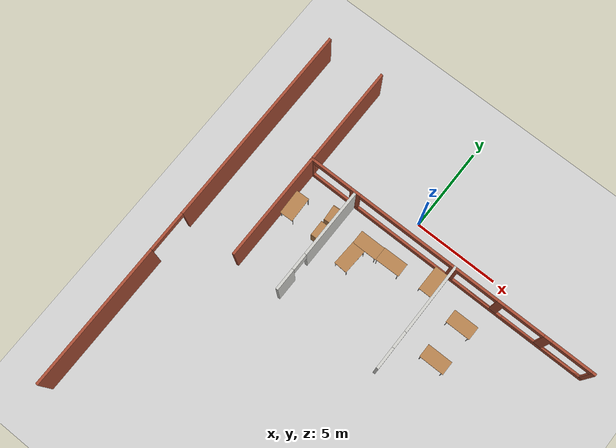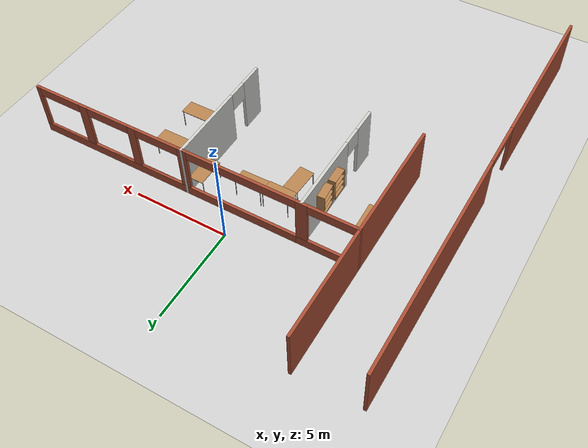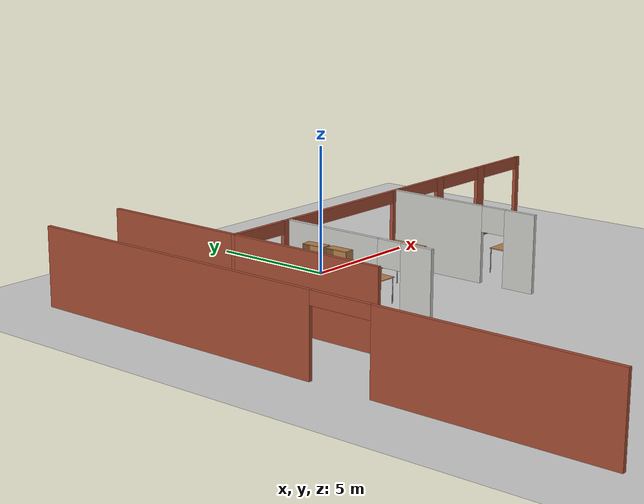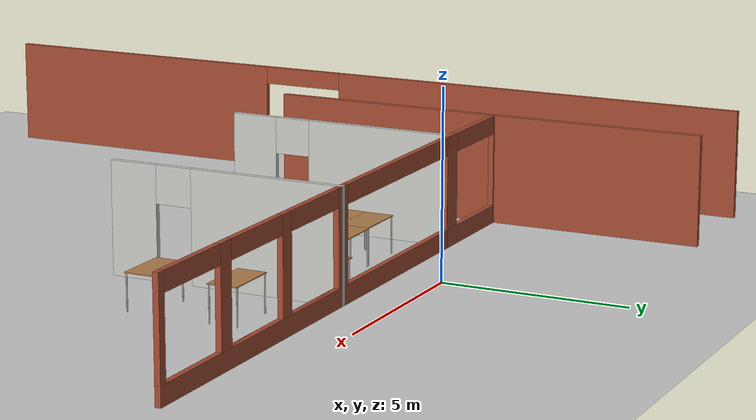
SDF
<sdf version="1.7">
 <world name="default">
  <model name="ground_plane">
   <static>1</static>
   <link name="link">
    <collision name="collision">
     <geometry><plane><normal>0 0 1</normal><size>100 100</size></plane></geometry>
     <surface><friction><ode><mu>100</mu><mu2>50</mu2></ode></friction></surface>
    </collision>
    <visual name="visual">
     <cast_shadows>0</cast_shadows>
     <geometry><plane><normal>0 0 1</normal><size>100 100</size></plane></geometry>
     <material>
      <script><uri>file://media/materials/scripts/gazebo.material</uri><name>Gazebo/Grey</name></script>
     </material>
    </visual>
   </link>
  </model>
  <model name="laboratory_world">
   <pose>0.94037 -7.07852 0 0 -0 0</pose>
   <link name="Wall_0">
    <collision name="Wall_0_Collision">
     <geometry><box><size>6.5 0.15 3</size></box></geometry>
     <pose>0 0 1.5 0 -0 0</pose>
    </collision>
    <visual name="Wall_0_Visual">
     <pose>0 0 1.5 0 -0 0</pose>
     <geometry><box><size>6.5 0.15 3</size></box></geometry>
     <material>
      <script><uri>file://media/materials/scripts/gazebo.material</uri><name>Gazebo/Bricks</name></script>
      <ambient>0.760784 0.662745 0.627451 1</ambient>
     </material>
     <meta><layer>0</layer></meta>
    </visual>
    <pose>-7.17678 2.5765 0 0 -0 -1.5708</pose>
   </link>
   <link name="Wall_116">
    <collision name="Wall_116_Collision">
     <geometry><box><size>6 0.15 3</size></box></geometry>
     <pose>0 0 1.5 0 -0 0</pose>
    </collision>
    <visual name="Wall_116_Visual">
     <pose>0 0 1.5 0 -0 0</pose>
     <geometry><box><size>6 0.15 3</size></box></geometry>
     <material>
      <script><uri>file://media/materials/scripts/gazebo.material</uri><name>Gazebo/Bricks</name></script>
      <ambient>0.760784 0.662745 0.627451 1</ambient>
     </material>
     <meta><layer>0</layer></meta>
    </visual>
    <pose>-7.17678 8.6765 0 0 -0 1.5708</pose>
   </link>
   <link name="Wall_123">
    <pose>-10.5738 -0.0515 0 0 -0 1.5708</pose>
    <visual name="Wall_123_Visual_0">
     <pose>-7.31381 0 1.5 0 -0 0</pose>
     <geometry><box><size>8.62238 0.15 3</size></box></geometry>
     <material>
      <script><uri>file://media/materials/scripts/gazebo.material</uri><name>Gazebo/Bricks</name></script>
      <ambient>0.921569 0.807843 0.615686 1</ambient>
     </material>
     <meta><layer>0</layer></meta>
    </visual>
    <collision name="Wall_123_Collision_0">
     <geometry><box><size>8.62238 0.15 3</size></box></geometry>
     <pose>-7.31381 0 1.5 0 -0 0</pose>
    </collision>
    <visual name="Wall_123_Visual_1">
     <pose>5.51119 0 1.5 0 -0 0</pose>
     <geometry><box><size>12.2276 0.15 3</size></box></geometry>
     <material>
      <script><uri>file://media/materials/scripts/gazebo.material</uri><name>Gazebo/Bricks</name></script>
      <ambient>0.921569 0.807843 0.615686 1</ambient>
     </material>
     <meta><layer>0</layer></meta>
    </visual>
    <collision name="Wall_123_Collision_1">
     <geometry><box><size>12.2276 0.15 3</size></box></geometry>
     <pose>5.51119 0 1.5 0 -0 0</pose>
    </collision>
    <visual name="Wall_123_Visual_2">
     <pose>-1.80262 0 2.75 0 -0 0</pose>
     <geometry><box><size>2.4 0.15 0.5</size></box></geometry>
     <material>
      <script><uri>file://media/materials/scripts/gazebo.material</uri><name>Gazebo/Bricks</name></script>
      <ambient>0.921569 0.807843 0.615686 1</ambient>
     </material>
     <meta><layer>0</layer></meta>
    </visual>
    <collision name="Wall_123_Collision_2">
     <geometry><box><size>2.4 0.15 0.5</size></box></geometry>
     <pose>-1.80262 0 2.75 0 -0 0</pose>
    </collision>
   </link>
   <link name="Wall_19">
    <pose>1.69822 5.7515 0 0 -0 0</pose>
    <visual name="Wall_19_Visual_0">
     <pose>-8.8394 0 1.5 0 -0 0</pose>
     <geometry><box><size>0.221205 0.15 3</size></box></geometry>
     <material>
      <script><uri>file://media/materials/scripts/gazebo.material</uri><name>Gazebo/Bricks</name></script>
      <ambient>0.760784 0.662745 0.627451 1</ambient>
     </material>
     <meta><layer>0</layer></meta>
    </visual>
    <collision name="Wall_19_Collision_0">
     <geometry><box><size>0.221205 0.15 3</size></box></geometry>
     <pose>-8.8394 0 1.5 0 -0 0</pose>
    </collision>
    <visual name="Wall_19_Visual_1">
     <pose>-7.22592 0 0.25 0 -0 0</pose>
     <geometry><box><size>3.00574 0.15 0.5</size></box></geometry>
     <material>
      <script><uri>file://media/materials/scripts/gazebo.material</uri><name>Gazebo/Bricks</name></script>
      <ambient>0.760784 0.662745 0.627451 1</ambient>
     </material>
     <meta><layer>0</layer></meta>
    </visual>
    <collision name="Wall_19_Collision_1">
     <geometry><box><size>3.00574 0.15 0.5</size></box></geometry>
     <pose>-7.22592 0 0.25 0 -0 0</pose>
    </collision>
    <visual name="Wall_19_Visual_2">
     <pose>-5.72305 0 1.5 0 -0 0</pose>
     <geometry><box><size>0 0.15 3</size></box></geometry>
     <material>
      <script><uri>file://media/materials/scripts/gazebo.material</uri><name>Gazebo/Bricks</name></script>
      <ambient>0.760784 0.662745 0.627451 1</ambient>
     </material>
     <meta><layer>0</layer></meta>
    </visual>
    <collision name="Wall_19_Collision_2">
     <geometry><box><size>0 0.15 3</size></box></geometry>
     <pose>-5.72305 0 1.5 0 -0 0</pose>
    </collision>
    <visual name="Wall_19_Visual_3">
     <pose>1.61347 0 0.25 0 -0 0</pose>
     <geometry><box><size>14.6731 0.15 0.5</size></box></geometry>
     <material>
      <script><uri>file://media/materials/scripts/gazebo.material</uri><name>Gazebo/Bricks</name></script>
      <ambient>0.760784 0.662745 0.627451 1</ambient>
     </material>
     <meta><layer>0</layer></meta>
    </visual>
    <collision name="Wall_19_Collision_3">
     <geometry><box><size>14.6731 0.15 0.5</size></box></geometry>
     <pose>1.61347 0 0.25 0 -0 0</pose>
    </collision>
    <visual name="Wall_19_Visual_4">
     <pose>0.326891 0 1.75 0 -0 0</pose>
     <geometry><box><size>0.499886 0.15 2.5</size></box></geometry>
     <material>
      <script><uri>file://media/materials/scripts/gazebo.material</uri><name>Gazebo/Bricks</name></script>
      <ambient>0.760784 0.662745 0.627451 1</ambient>
     </material>
     <meta><layer>0</layer></meta>
    </visual>
    <collision name="Wall_19_Collision_4">
     <geometry><box><size>0.499886 0.15 2.5</size></box></geometry>
     <pose>0.326891 0 1.75 0 -0 0</pose>
    </collision>
    <visual name="Wall_19_Visual_5">
     <pose>3.20242 0 1.75 0 -0 0</pose>
     <geometry><box><size>0.451166 0.15 2.5</size></box></geometry>
     <material>
      <script><uri>file://media/materials/scripts/gazebo.material</uri><name>Gazebo/Bricks</name></script>
      <ambient>0.760784 0.662745 0.627451 1</ambient>
     </material>
     <meta><layer>0</layer></meta>
    </visual>
    <collision name="Wall_19_Collision_5">
     <geometry><box><size>0.451166 0.15 2.5</size></box></geometry>
     <pose>3.20242 0 1.75 0 -0 0</pose>
    </collision>
    <visual name="Wall_19_Visual_6">
     <pose>6.07079 0 1.75 0 -0 0</pose>
     <geometry><box><size>0.485575 0.15 2.5</size></box></geometry>
     <material>
      <script><uri>file://media/materials/scripts/gazebo.material</uri><name>Gazebo/Bricks</name></script>
      <ambient>0.760784 0.662745 0.627451 1</ambient>
     </material>
     <meta><layer>0</layer></meta>
    </visual>
    <collision name="Wall_19_Collision_6">
     <geometry><box><size>0.485575 0.15 2.5</size></box></geometry>
     <pose>6.07079 0 1.75 0 -0 0</pose>
    </collision>
    <visual name="Wall_19_Visual_7">
     <pose>8.83179 0 1.75 0 -0 0</pose>
     <geometry><box><size>0.236425 0.15 2.5</size></box></geometry>
     <material>
      <script><uri>file://media/materials/scripts/gazebo.material</uri><name>Gazebo/Bricks</name></script>
      <ambient>0.760784 0.662745 0.627451 1</ambient>
     </material>
     <meta><layer>0</layer></meta>
    </visual>
    <collision name="Wall_19_Collision_7">
     <geometry><box><size>0.236425 0.15 2.5</size></box></geometry>
     <pose>8.83179 0 1.75 0 -0 0</pose>
    </collision>
    <visual name="Wall_19_Visual_8">
     <pose>1.77683 0 0.5 0 -0 0</pose>
     <geometry><box><size>2.4 0.15 0</size></box></geometry>
     <material>
      <script><uri>file://media/materials/scripts/gazebo.material</uri><name>Gazebo/Bricks</name></script>
      <ambient>0.760784 0.662745 0.627451 1</ambient>
     </material>
     <meta><layer>0</layer></meta>
    </visual>
    <collision name="Wall_19_Collision_8">
     <geometry><box><size>2.4 0.15 0</size></box></geometry>
     <pose>1.77683 0 0.5 0 -0 0</pose>
    </collision>
    <visual name="Wall_19_Visual_9">
     <pose>4.628 0 0.5 0 -0 0</pose>
     <geometry><box><size>2.4 0.15 0</size></box></geometry>
     <material>
      <script><uri>file://media/materials/scripts/gazebo.material</uri><name>Gazebo/Bricks</name></script>
      <ambient>0.760784 0.662745 0.627451 1</ambient>
     </material>
     <meta><layer>0</layer></meta>
    </visual>
    <collision name="Wall_19_Collision_9">
     <geometry><box><size>2.4 0.15 0</size></box></geometry>
     <pose>4.628 0 0.5 0 -0 0</pose>
    </collision>
    <visual name="Wall_19_Visual_10">
     <pose>7.51358 0 0.5 0 -0 0</pose>
     <geometry><box><size>2.4 0.15 0</size></box></geometry>
     <material>
      <script><uri>file://media/materials/scripts/gazebo.material</uri><name>Gazebo/Bricks</name></script>
      <ambient>0.760784 0.662745 0.627451 1</ambient>
     </material>
     <meta><layer>0</layer></meta>
    </visual>
    <collision name="Wall_19_Collision_10">
     <geometry><box><size>2.4 0.15 0</size></box></geometry>
     <pose>7.51358 0 0.5 0 -0 0</pose>
    </collision>
    <visual name="Wall_19_Visual_11">
     <pose>-6.02592 0 1.75 0 -0 0</pose>
     <geometry><box><size>0.605742 0.15 2.5</size></box></geometry>
     <material>
      <script><uri>file://media/materials/scripts/gazebo.material</uri><name>Gazebo/Bricks</name></script>
      <ambient>0.760784 0.662745 0.627451 1</ambient>
     </material>
     <meta><layer>0</layer></meta>
    </visual>
    <collision name="Wall_19_Collision_11">
     <geometry><box><size>0.605742 0.15 2.5</size></box></geometry>
     <pose>-6.02592 0 1.75 0 -0 0</pose>
    </collision>
    <visual name="Wall_19_Visual_12">
     <pose>-6.02592 0 1.75 0 -0 0</pose>
     <geometry><box><size>0.605742 0.15 2.5</size></box></geometry>
     <material>
      <script><uri>file://media/materials/scripts/gazebo.material</uri><name>Gazebo/Bricks</name></script>
      <ambient>0.760784 0.662745 0.627451 1</ambient>
     </material>
     <meta><layer>0</layer></meta>
    </visual>
    <collision name="Wall_19_Collision_12">
     <geometry><box><size>0.605742 0.15 2.5</size></box></geometry>
     <pose>-6.02592 0 1.75 0 -0 0</pose>
    </collision>
    <visual name="Wall_19_Visual_13">
     <pose>-2.82305 0 2.75 0 -0 0</pose>
     <geometry><box><size>5.8 0.15 0.5</size></box></geometry>
     <material>
      <script><uri>file://media/materials/scripts/gazebo.material</uri><name>Gazebo/Bricks</name></script>
      <ambient>0.760784 0.662745 0.627451 1</ambient>
     </material>
     <meta><layer>0</layer></meta>
    </visual>
    <collision name="Wall_19_Collision_13">
     <geometry><box><size>5.8 0.15 0.5</size></box></geometry>
     <pose>-2.82305 0 2.75 0 -0 0</pose>
    </collision>
    <visual name="Wall_19_Visual_14">
     <pose>-7.52879 0 2.75 0 -0 0</pose>
     <geometry><box><size>2.4 0.15 0.5</size></box></geometry>
     <material>
      <script><uri>file://media/materials/scripts/gazebo.material</uri><name>Gazebo/Bricks</name></script>
      <ambient>0.760784 0.662745 0.627451 1</ambient>
     </material>
     <meta><layer>0</layer></meta>
    </visual>
    <collision name="Wall_19_Collision_14">
     <geometry><box><size>2.4 0.15 0.5</size></box></geometry>
     <pose>-7.52879 0 2.75 0 -0 0</pose>
    </collision>
    <visual name="Wall_19_Visual_15">
     <pose>1.77683 0 2.75 0 -0 0</pose>
     <geometry><box><size>2.4 0.15 0.5</size></box></geometry>
     <material>
      <script><uri>file://media/materials/scripts/gazebo.material</uri><name>Gazebo/Bricks</name></script>
      <ambient>0.760784 0.662745 0.627451 1</ambient>
     </material>
     <meta><layer>0</layer></meta>
    </visual>
    <collision name="Wall_19_Collision_15">
     <geometry><box><size>2.4 0.15 0.5</size></box></geometry>
     <pose>1.77683 0 2.75 0 -0 0</pose>
    </collision>
    <visual name="Wall_19_Visual_16">
     <pose>4.628 0 2.75 0 -0 0</pose>
     <geometry><box><size>2.4 0.15 0.5</size></box></geometry>
     <material>
      <script><uri>file://media/materials/scripts/gazebo.material</uri><name>Gazebo/Bricks</name></script>
      <ambient>0.760784 0.662745 0.627451 1</ambient>
     </material>
     <meta><layer>0</layer></meta>
    </visual>
    <collision name="Wall_19_Collision_16">
     <geometry><box><size>2.4 0.15 0.5</size></box></geometry>
     <pose>4.628 0 2.75 0 -0 0</pose>
    </collision>
    <visual name="Wall_19_Visual_17">
     <pose>7.51358 0 2.75 0 -0 0</pose>
     <geometry><box><size>2.4 0.15 0.5</size></box></geometry>
     <material>
      <script><uri>file://media/materials/scripts/gazebo.material</uri><name>Gazebo/Bricks</name></script>
      <ambient>0.760784 0.662745 0.627451 1</ambient>
     </material>
     <meta><layer>0</layer></meta>
    </visual>
    <collision name="Wall_19_Collision_17">
     <geometry><box><size>2.4 0.15 0.5</size></box></geometry>
     <pose>7.51358 0 2.75 0 -0 0</pose>
    </collision>
   </link>
   <link name="Wall_5">
    <pose>-4.31828 2.5595 0 0 -0 1.56812</pose>
    <visual name="Wall_5_Visual_0">
     <pose>-2.60055 0 1.5 0 -0 0</pose>
     <geometry><box><size>1.29889 0.15 3</size></box></geometry>
     <material>
      <script><uri>file://media/materials/scripts/gazebo.material</uri><name>Gazebo/CeilingTiled</name></script>
      <ambient>0.921569 0.807843 0.615686 1</ambient>
     </material>
     <meta><layer>0</layer></meta>
    </visual>
    <collision name="Wall_5_Collision_0">
     <geometry><box><size>1.29889 0.15 3</size></box></geometry>
     <pose>-2.60055 0 1.5 0 -0 0</pose>
    </collision>
    <visual name="Wall_5_Visual_1">
     <pose>1.14945 0 1.5 0 -0 0</pose>
     <geometry><box><size>4.20111 0.15 3</size></box></geometry>
     <material>
      <script><uri>file://media/materials/scripts/gazebo.material</uri><name>Gazebo/CeilingTiled</name></script>
      <ambient>0.921569 0.807843 0.615686 1</ambient>
     </material>
     <meta><layer>0</layer></meta>
    </visual>
    <collision name="Wall_5_Collision_1">
     <geometry><box><size>4.20111 0.15 3</size></box></geometry>
     <pose>1.14945 0 1.5 0 -0 0</pose>
    </collision>
    <visual name="Wall_5_Visual_2">
     <pose>-1.45111 0 2.5 0 -0 0</pose>
     <geometry><box><size>1 0.15 1</size></box></geometry>
     <material>
      <script><uri>file://media/materials/scripts/gazebo.material</uri><name>Gazebo/CeilingTiled</name></script>
      <ambient>0.921569 0.807843 0.615686 1</ambient>
     </material>
     <meta><layer>0</layer></meta>
    </visual>
    <collision name="Wall_5_Collision_2">
     <geometry><box><size>1 0.15 1</size></box></geometry>
     <pose>-1.45111 0 2.5 0 -0 0</pose>
    </collision>
   </link>
   <link name="Wall_8">
    <pose>2.02322 2.5765 0 0 -0 1.5708</pose>
    <visual name="Wall_8_Visual_0">
     <pose>-2.6003 0 1.5 0 -0 0</pose>
     <geometry><box><size>1.2994 0.15 3</size></box></geometry>
     <material>
      <script><uri>file://media/materials/scripts/gazebo.material</uri><name>Gazebo/CeilingTiled</name></script>
      <ambient>0.921569 0.807843 0.615686 1</ambient>
     </material>
     <meta><layer>0</layer></meta>
    </visual>
    <collision name="Wall_8_Collision_0">
     <geometry><box><size>1.2994 0.15 3</size></box></geometry>
     <pose>-2.6003 0 1.5 0 -0 0</pose>
    </collision>
    <visual name="Wall_8_Visual_1">
     <pose>1.1497 0 1.5 0 -0 0</pose>
     <geometry><box><size>4.20061 0.15 3</size></box></geometry>
     <material>
      <script><uri>file://media/materials/scripts/gazebo.material</uri><name>Gazebo/CeilingTiled</name></script>
      <ambient>0.921569 0.807843 0.615686 1</ambient>
     </material>
     <meta><layer>0</layer></meta>
    </visual>
    <collision name="Wall_8_Collision_1">
     <geometry><box><size>4.20061 0.15 3</size></box></geometry>
     <pose>1.1497 0 1.5 0 -0 0</pose>
    </collision>
    <visual name="Wall_8_Visual_2">
     <pose>-1.4506 0 2.5 0 -0 0</pose>
     <geometry><box><size>1 0.15 1</size></box></geometry>
     <material>
      <script><uri>file://media/materials/scripts/gazebo.material</uri><name>Gazebo/CeilingTiled</name></script>
      <ambient>0.921569 0.807843 0.615686 1</ambient>
     </material>
     <meta><layer>0</layer></meta>
    </visual>
    <collision name="Wall_8_Collision_2">
     <geometry><box><size>1 0.15 1</size></box></geometry>
     <pose>-1.4506 0 2.5 0 -0 0</pose>
    </collision>
   </link>
   <static>1</static>
  </model>
  <model name="bookshelf_1">
   <static>1</static>
   <link name="link">
    <inertial><mass>1</mass></inertial>
    <collision name="back">
     <pose>0 0.005 0.6 0 -0 0</pose>
     <geometry><box><size>0.9 0.01 1.2</size></box></geometry>
    </collision>
    <visual name="visual1">
     <pose>0 0.005 0.6 0 -0 0</pose>
     <geometry><box><size>0.9 0.01 1.2</size></box></geometry>
     <material>
      <script><uri>file://media/materials/scripts/gazebo.material</uri><name>Gazebo/Wood</name></script>
     </material>
    </visual>
    <collision name="left_side">
     <pose>0.45 -0.195 0.6 0 -0 0</pose>
     <geometry><box><size>0.02 0.4 1.2</size></box></geometry>
    </collision>
    <visual name="visual2">
     <pose>0.45 -0.195 0.6 0 -0 0</pose>
     <geometry><box><size>0.02 0.4 1.2</size></box></geometry>
     <material>
      <script><uri>file://media/materials/scripts/gazebo.material</uri><name>Gazebo/Wood</name></script>
     </material>
    </visual>
    <collision name="right_side">
     <pose>-0.45 -0.195 0.6 0 -0 0</pose>
     <geometry><box><size>0.02 0.4 1.2</size></box></geometry>
    </collision>
    <visual name="visual3">
     <pose>-0.45 -0.195 0.6 0 -0 0</pose>
     <geometry><box><size>0.02 0.4 1.2</size></box></geometry>
     <material>
      <script><uri>file://media/materials/scripts/gazebo.material</uri><name>Gazebo/Wood</name></script>
     </material>
    </visual>
    <collision name="bottom">
     <pose>0 -0.195 0.03 0 -0 0</pose>
     <geometry><box><size>0.88 0.4 0.06</size></box></geometry>
    </collision>
    <visual name="visual4">
     <pose>0 -0.195 0.03 0 -0 0</pose>
     <geometry><box><size>0.88 0.4 0.06</size></box></geometry>
     <material>
      <script><uri>file://media/materials/scripts/gazebo.material</uri><name>Gazebo/Wood</name></script>
     </material>
    </visual>
    <collision name="top">
     <pose>0 -0.195 1.19 0 -0 0</pose>
     <geometry><box><size>0.88 0.4 0.02</size></box></geometry>
    </collision>
    <visual name="visual5">
     <pose>0 -0.195 1.19 0 -0 0</pose>
     <geometry><box><size>0.88 0.4 0.02</size></box></geometry>
     <material>
      <script><uri>file://media/materials/scripts/gazebo.material</uri><name>Gazebo/Wood</name></script>
     </material>
    </visual>
    <collision name="low_shelf">
     <pose>0 -0.195 0.43 0 -0 0</pose>
     <geometry><box><size>0.88 0.4 0.02</size></box></geometry>
    </collision>
    <visual name="visual6">
     <pose>0 -0.195 0.43 0 -0 0</pose>
     <geometry><box><size>0.88 0.4 0.02</size></box></geometry>
     <material>
      <script><uri>file://media/materials/scripts/gazebo.material</uri><name>Gazebo/Wood</name></script>
     </material>
    </visual>
    <collision name="high_shelf">
     <pose>0 -0.195 0.8 0 -0 0</pose>
     <geometry><box><size>0.88 0.4 0.02</size></box></geometry>
    </collision>
    <visual name="visual7">
     <pose>0 -0.195 0.8 0 -0 0</pose>
     <geometry><box><size>0.88 0.4 0.02</size></box></geometry>
     <material>
      <script><uri>file://media/materials/scripts/gazebo.material</uri><name>Gazebo/Wood</name></script>
     </material>
    </visual>
   </link>
   <pose>-3.48841 -2.88306 1.19907 0 0 -1.49731</pose>
  </model>
  <model name="table">
   <static>1</static>
   <link name="link">
    <collision name="surface">
     <pose>0 0 1 0 -0 0</pose>
     <geometry><box><size>1.5 0.8 0.03</size></box></geometry>
     <surface><friction><ode><mu>0.6</mu><mu2>0.6</mu2></ode></friction></surface>
    </collision>
    <visual name="visual1">
     <pose>0 0 1 0 -0 0</pose>
     <geometry><box><size>1.5 0.8 0.03</size></box></geometry>
     <material>
      <script><uri>file://media/materials/scripts/gazebo.material</uri><name>Gazebo/Wood</name></script>
     </material>
    </visual>
    <collision name="front_left_leg">
     <pose>0.68 0.38 0.5 0 -0 0</pose>
     <geometry><cylinder><radius>0.02</radius><length>1</length></cylinder></geometry>
    </collision>
    <visual name="front_left_leg">
     <pose>0.68 0.38 0.5 0 -0 0</pose>
     <geometry><cylinder><radius>0.02</radius><length>1</length></cylinder></geometry>
     <material>
      <script><uri>file://media/materials/scripts/gazebo.material</uri><name>Gazebo/Grey</name></script>
     </material>
    </visual>
    <collision name="front_right_leg">
     <pose>0.68 -0.38 0.5 0 -0 0</pose>
     <geometry><cylinder><radius>0.02</radius><length>1</length></cylinder></geometry>
    </collision>
    <visual name="front_right_leg">
     <pose>0.68 -0.38 0.5 0 -0 0</pose>
     <geometry><cylinder><radius>0.02</radius><length>1</length></cylinder></geometry>
     <material>
      <script><uri>file://media/materials/scripts/gazebo.material</uri><name>Gazebo/Grey</name></script>
     </material>
    </visual>
    <collision name="back_right_leg">
     <pose>-0.68 -0.38 0.5 0 -0 0</pose>
     <geometry><cylinder><radius>0.02</radius><length>1</length></cylinder></geometry>
    </collision>
    <visual name="back_right_leg">
     <pose>-0.68 -0.38 0.5 0 -0 0</pose>
     <geometry><cylinder><radius>0.02</radius><length>1</length></cylinder></geometry>
     <material>
      <script><uri>file://media/materials/scripts/gazebo.material</uri><name>Gazebo/Grey</name></script>
     </material>
    </visual>
    <collision name="back_left_leg">
     <pose>-0.68 0.38 0.5 0 -0 0</pose>
     <geometry><cylinder><radius>0.02</radius><length>1</length></cylinder></geometry>
    </collision>
    <visual name="back_left_leg">
     <pose>-0.68 0.38 0.5 0 -0 0</pose>
     <geometry><cylinder><radius>0.02</radius><length>1</length></cylinder></geometry>
     <material>
      <script><uri>file://media/materials/scripts/gazebo.material</uri><name>Gazebo/Grey</name></script>
     </material>
    </visual>
   </link>
   <pose>-5.72036 -3.4932 0 0 -0 1.59943</pose>
  </model>
  <model name="table_0">
   <static>1</static>
   <link name="link">
    <collision name="surface">
     <pose>0 0 1 0 -0 0</pose>
     <geometry><box><size>1.5 0.8 0.03</size></box></geometry>
     <surface><friction><ode><mu>0.6</mu><mu2>0.6</mu2></ode></friction></surface>
    </collision>
    <visual name="visual1">
     <pose>0 0 1 0 -0 0</pose>
     <geometry><box><size>1.5 0.8 0.03</size></box></geometry>
     <material>
      <script><uri>file://media/materials/scripts/gazebo.material</uri><name>Gazebo/Wood</name></script>
     </material>
    </visual>
    <collision name="front_left_leg">
     <pose>0.68 0.38 0.5 0 -0 0</pose>
     <geometry><cylinder><radius>0.02</radius><length>1</length></cylinder></geometry>
    </collision>
    <visual name="front_left_leg">
     <pose>0.68 0.38 0.5 0 -0 0</pose>
     <geometry><cylinder><radius>0.02</radius><length>1</length></cylinder></geometry>
     <material>
      <script><uri>file://media/materials/scripts/gazebo.material</uri><name>Gazebo/Grey</name></script>
     </material>
    </visual>
    <collision name="front_right_leg">
     <pose>0.68 -0.38 0.5 0 -0 0</pose>
     <geometry><cylinder><radius>0.02</radius><length>1</length></cylinder></geometry>
    </collision>
    <visual name="front_right_leg">
     <pose>0.68 -0.38 0.5 0 -0 0</pose>
     <geometry><cylinder><radius>0.02</radius><length>1</length></cylinder></geometry>
     <material>
      <script><uri>file://media/materials/scripts/gazebo.material</uri><name>Gazebo/Grey</name></script>
     </material>
    </visual>
    <collision name="back_right_leg">
     <pose>-0.68 -0.38 0.5 0 -0 0</pose>
     <geometry><cylinder><radius>0.02</radius><length>1</length></cylinder></geometry>
    </collision>
    <visual name="back_right_leg">
     <pose>-0.68 -0.38 0.5 0 -0 0</pose>
     <geometry><cylinder><radius>0.02</radius><length>1</length></cylinder></geometry>
     <material>
      <script><uri>file://media/materials/scripts/gazebo.material</uri><name>Gazebo/Grey</name></script>
     </material>
    </visual>
    <collision name="back_left_leg">
     <pose>-0.68 0.38 0.5 0 -0 0</pose>
     <geometry><cylinder><radius>0.02</radius><length>1</length></cylinder></geometry>
    </collision>
    <visual name="back_left_leg">
     <pose>-0.68 0.38 0.5 0 -0 0</pose>
     <geometry><cylinder><radius>0.02</radius><length>1</length></cylinder></geometry>
     <material>
      <script><uri>file://media/materials/scripts/gazebo.material</uri><name>Gazebo/Grey</name></script>
     </material>
    </visual>
   </link>
   <pose>-1.71641 -3.86384 0 0 0 -1.6254</pose>
  </model>
  <model name="table_1">
   <static>1</static>
   <link name="link">
    <collision name="surface">
     <pose>0 0 1 0 -0 0</pose>
     <geometry><box><size>1.5 0.8 0.03</size></box></geometry>
     <surface><friction><ode><mu>0.6</mu><mu2>0.6</mu2></ode></friction></surface>
    </collision>
    <visual name="visual1">
     <pose>0 0 1 0 -0 0</pose>
     <geometry><box><size>1.5 0.8 0.03</size></box></geometry>
     <material>
      <script><uri>file://media/materials/scripts/gazebo.material</uri><name>Gazebo/Wood</name></script>
     </material>
    </visual>
    <collision name="front_left_leg">
     <pose>0.68 0.38 0.5 0 -0 0</pose>
     <geometry><cylinder><radius>0.02</radius><length>1</length></cylinder></geometry>
    </collision>
    <visual name="front_left_leg">
     <pose>0.68 0.38 0.5 0 -0 0</pose>
     <geometry><cylinder><radius>0.02</radius><length>1</length></cylinder></geometry>
     <material>
      <script><uri>file://media/materials/scripts/gazebo.material</uri><name>Gazebo/Grey</name></script>
     </material>
    </visual>
    <collision name="front_right_leg">
     <pose>0.68 -0.38 0.5 0 -0 0</pose>
     <geometry><cylinder><radius>0.02</radius><length>1</length></cylinder></geometry>
    </collision>
    <visual name="front_right_leg">
     <pose>0.68 -0.38 0.5 0 -0 0</pose>
     <geometry><cylinder><radius>0.02</radius><length>1</length></cylinder></geometry>
     <material>
      <script><uri>file://media/materials/scripts/gazebo.material</uri><name>Gazebo/Grey</name></script>
     </material>
    </visual>
    <collision name="back_right_leg">
     <pose>-0.68 -0.38 0.5 0 -0 0</pose>
     <geometry><cylinder><radius>0.02</radius><length>1</length></cylinder></geometry>
    </collision>
    <visual name="back_right_leg">
     <pose>-0.68 -0.38 0.5 0 -0 0</pose>
     <geometry><cylinder><radius>0.02</radius><length>1</length></cylinder></geometry>
     <material>
      <script><uri>file://media/materials/scripts/gazebo.material</uri><name>Gazebo/Grey</name></script>
     </material>
    </visual>
    <collision name="back_left_leg">
     <pose>-0.68 0.38 0.5 0 -0 0</pose>
     <geometry><cylinder><radius>0.02</radius><length>1</length></cylinder></geometry>
    </collision>
    <visual name="back_left_leg">
     <pose>-0.68 0.38 0.5 0 -0 0</pose>
     <geometry><cylinder><radius>0.02</radius><length>1</length></cylinder></geometry>
     <material>
      <script><uri>file://media/materials/scripts/gazebo.material</uri><name>Gazebo/Grey</name></script>
     </material>
    </visual>
   </link>
   <pose>0.160108 -2.69992 0 0 0 -3.12692</pose>
  </model>
  <model name="table_2">
   <static>1</static>
   <link name="link">
    <collision name="surface">
     <pose>0 0 1 0 -0 0</pose>
     <geometry><box><size>1.5 0.8 0.03</size></box></geometry>
     <surface><friction><ode><mu>0.6</mu><mu2>0.6</mu2></ode></friction></surface>
    </collision>
    <visual name="visual1">
     <pose>0 0 1 0 -0 0</pose>
     <geometry><box><size>1.5 0.8 0.03</size></box></geometry>
     <material>
      <script><uri>file://media/materials/scripts/gazebo.material</uri><name>Gazebo/Wood</name></script>
     </material>
    </visual>
    <collision name="front_left_leg">
     <pose>0.68 0.38 0.5 0 -0 0</pose>
     <geometry><cylinder><radius>0.02</radius><length>1</length></cylinder></geometry>
    </collision>
    <visual name="front_left_leg">
     <pose>0.68 0.38 0.5 0 -0 0</pose>
     <geometry><cylinder><radius>0.02</radius><length>1</length></cylinder></geometry>
     <material>
      <script><uri>file://media/materials/scripts/gazebo.material</uri><name>Gazebo/Grey</name></script>
     </material>
    </visual>
    <collision name="front_right_leg">
     <pose>0.68 -0.38 0.5 0 -0 0</pose>
     <geometry><cylinder><radius>0.02</radius><length>1</length></cylinder></geometry>
    </collision>
    <visual name="front_right_leg">
     <pose>0.68 -0.38 0.5 0 -0 0</pose>
     <geometry><cylinder><radius>0.02</radius><length>1</length></cylinder></geometry>
     <material>
      <script><uri>file://media/materials/scripts/gazebo.material</uri><name>Gazebo/Grey</name></script>
     </material>
    </visual>
    <collision name="back_right_leg">
     <pose>-0.68 -0.38 0.5 0 -0 0</pose>
     <geometry><cylinder><radius>0.02</radius><length>1</length></cylinder></geometry>
    </collision>
    <visual name="back_right_leg">
     <pose>-0.68 -0.38 0.5 0 -0 0</pose>
     <geometry><cylinder><radius>0.02</radius><length>1</length></cylinder></geometry>
     <material>
      <script><uri>file://media/materials/scripts/gazebo.material</uri><name>Gazebo/Grey</name></script>
     </material>
    </visual>
    <collision name="back_left_leg">
     <pose>-0.68 0.38 0.5 0 -0 0</pose>
     <geometry><cylinder><radius>0.02</radius><length>1</length></cylinder></geometry>
    </collision>
    <visual name="back_left_leg">
     <pose>-0.68 0.38 0.5 0 -0 0</pose>
     <geometry><cylinder><radius>0.02</radius><length>1</length></cylinder></geometry>
     <material>
      <script><uri>file://media/materials/scripts/gazebo.material</uri><name>Gazebo/Grey</name></script>
     </material>
    </visual>
   </link>
   <pose>-1.32192 -2.73894 0 0 -0 0</pose>
  </model>
  <model name="table_3">
   <static>1</static>
   <link name="link">
    <collision name="surface">
     <pose>0 0 1 0 -0 0</pose>
     <geometry><box><size>1.5 0.8 0.03</size></box></geometry>
     <surface><friction><ode><mu>0.6</mu><mu2>0.6</mu2></ode></friction></surface>
    </collision>
    <visual name="visual1">
     <pose>0 0 1 0 -0 0</pose>
     <geometry><box><size>1.5 0.8 0.03</size></box></geometry>
     <material>
      <script><uri>file://media/materials/scripts/gazebo.material</uri><name>Gazebo/Wood</name></script>
     </material>
    </visual>
    <collision name="front_left_leg">
     <pose>0.68 0.38 0.5 0 -0 0</pose>
     <geometry><cylinder><radius>0.02</radius><length>1</length></cylinder></geometry>
    </collision>
    <visual name="front_left_leg">
     <pose>0.68 0.38 0.5 0 -0 0</pose>
     <geometry><cylinder><radius>0.02</radius><length>1</length></cylinder></geometry>
     <material>
      <script><uri>file://media/materials/scripts/gazebo.material</uri><name>Gazebo/Grey</name></script>
     </material>
    </visual>
    <collision name="front_right_leg">
     <pose>0.68 -0.38 0.5 0 -0 0</pose>
     <geometry><cylinder><radius>0.02</radius><length>1</length></cylinder></geometry>
    </collision>
    <visual name="front_right_leg">
     <pose>0.68 -0.38 0.5 0 -0 0</pose>
     <geometry><cylinder><radius>0.02</radius><length>1</length></cylinder></geometry>
     <material>
      <script><uri>file://media/materials/scripts/gazebo.material</uri><name>Gazebo/Grey</name></script>
     </material>
    </visual>
    <collision name="back_right_leg">
     <pose>-0.68 -0.38 0.5 0 -0 0</pose>
     <geometry><cylinder><radius>0.02</radius><length>1</length></cylinder></geometry>
    </collision>
    <visual name="back_right_leg">
     <pose>-0.68 -0.38 0.5 0 -0 0</pose>
     <geometry><cylinder><radius>0.02</radius><length>1</length></cylinder></geometry>
     <material>
      <script><uri>file://media/materials/scripts/gazebo.material</uri><name>Gazebo/Grey</name></script>
     </material>
    </visual>
    <collision name="back_left_leg">
     <pose>-0.68 0.38 0.5 0 -0 0</pose>
     <geometry><cylinder><radius>0.02</radius><length>1</length></cylinder></geometry>
    </collision>
    <visual name="back_left_leg">
     <pose>-0.68 0.38 0.5 0 -0 0</pose>
     <geometry><cylinder><radius>0.02</radius><length>1</length></cylinder></geometry>
     <material>
      <script><uri>file://media/materials/scripts/gazebo.material</uri><name>Gazebo/Grey</name></script>
     </material>
    </visual>
   </link>
   <pose>5.02956 -5.31997 0 0 -0 0</pose>
  </model>
  <model name="table_5">
   <static>1</static>
   <link name="link">
    <collision name="surface">
     <pose>0 0 1 0 -0 0</pose>
     <geometry><box><size>1.5 0.8 0.03</size></box></geometry>
     <surface><friction><ode><mu>0.6</mu><mu2>0.6</mu2></ode></friction></surface>
    </collision>
    <visual name="visual1">
     <pose>0 0 1 0 -0 0</pose>
     <geometry><box><size>1.5 0.8 0.03</size></box></geometry>
     <material>
      <script><uri>file://media/materials/scripts/gazebo.material</uri><name>Gazebo/Wood</name></script>
     </material>
    </visual>
    <collision name="front_left_leg">
     <pose>0.68 0.38 0.5 0 -0 0</pose>
     <geometry><cylinder><radius>0.02</radius><length>1</length></cylinder></geometry>
    </collision>
    <visual name="front_left_leg">
     <pose>0.68 0.38 0.5 0 -0 0</pose>
     <geometry><cylinder><radius>0.02</radius><length>1</length></cylinder></geometry>
     <material>
      <script><uri>file://media/materials/scripts/gazebo.material</uri><name>Gazebo/Grey</name></script>
     </material>
    </visual>
    <collision name="front_right_leg">
     <pose>0.68 -0.38 0.5 0 -0 0</pose>
     <geometry><cylinder><radius>0.02</radius><length>1</length></cylinder></geometry>
    </collision>
    <visual name="front_right_leg">
     <pose>0.68 -0.38 0.5 0 -0 0</pose>
     <geometry><cylinder><radius>0.02</radius><length>1</length></cylinder></geometry>
     <material>
      <script><uri>file://media/materials/scripts/gazebo.material</uri><name>Gazebo/Grey</name></script>
     </material>
    </visual>
    <collision name="back_right_leg">
     <pose>-0.68 -0.38 0.5 0 -0 0</pose>
     <geometry><cylinder><radius>0.02</radius><length>1</length></cylinder></geometry>
    </collision>
    <visual name="back_right_leg">
     <pose>-0.68 -0.38 0.5 0 -0 0</pose>
     <geometry><cylinder><radius>0.02</radius><length>1</length></cylinder></geometry>
     <material>
      <script><uri>file://media/materials/scripts/gazebo.material</uri><name>Gazebo/Grey</name></script>
     </material>
    </visual>
    <collision name="back_left_leg">
     <pose>-0.68 0.38 0.5 0 -0 0</pose>
     <geometry><cylinder><radius>0.02</radius><length>1</length></cylinder></geometry>
    </collision>
    <visual name="back_left_leg">
     <pose>-0.68 0.38 0.5 0 -0 0</pose>
     <geometry><cylinder><radius>0.02</radius><length>1</length></cylinder></geometry>
     <material>
      <script><uri>file://media/materials/scripts/gazebo.material</uri><name>Gazebo/Grey</name></script>
     </material>
    </visual>
   </link>
   <pose>5.02165 -3.05216 0 0 -0 0</pose>
  </model>
  <model name="bookshelf_2">
   <static>1</static>
   <link name="link">
    <inertial><mass>1</mass></inertial>
    <collision name="back">
     <pose>0 0.005 0.6 0 -0 0</pose>
     <geometry><box><size>0.9 0.01 1.2</size></box></geometry>
    </collision>
    <visual name="visual1">
     <pose>0 0.005 0.6 0 -0 0</pose>
     <geometry><box><size>0.9 0.01 1.2</size></box></geometry>
     <material>
      <script><uri>file://media/materials/scripts/gazebo.material</uri><name>Gazebo/Wood</name></script>
     </material>
    </visual>
    <collision name="left_side">
     <pose>0.45 -0.195 0.6 0 -0 0</pose>
     <geometry><box><size>0.02 0.4 1.2</size></box></geometry>
    </collision>
    <visual name="visual2">
     <pose>0.45 -0.195 0.6 0 -0 0</pose>
     <geometry><box><size>0.02 0.4 1.2</size></box></geometry>
     <material>
      <script><uri>file://media/materials/scripts/gazebo.material</uri><name>Gazebo/Wood</name></script>
     </material>
    </visual>
    <collision name="right_side">
     <pose>-0.45 -0.195 0.6 0 -0 0</pose>
     <geometry><box><size>0.02 0.4 1.2</size></box></geometry>
    </collision>
    <visual name="visual3">
     <pose>-0.45 -0.195 0.6 0 -0 0</pose>
     <geometry><box><size>0.02 0.4 1.2</size></box></geometry>
     <material>
      <script><uri>file://media/materials/scripts/gazebo.material</uri><name>Gazebo/Wood</name></script>
     </material>
    </visual>
    <collision name="bottom">
     <pose>0 -0.195 0.03 0 -0 0</pose>
     <geometry><box><size>0.88 0.4 0.06</size></box></geometry>
    </collision>
    <visual name="visual4">
     <pose>0 -0.195 0.03 0 -0 0</pose>
     <geometry><box><size>0.88 0.4 0.06</size></box></geometry>
     <material>
      <script><uri>file://media/materials/scripts/gazebo.material</uri><name>Gazebo/Wood</name></script>
     </material>
    </visual>
    <collision name="top">
     <pose>0 -0.195 1.19 0 -0 0</pose>
     <geometry><box><size>0.88 0.4 0.02</size></box></geometry>
    </collision>
    <visual name="visual5">
     <pose>0 -0.195 1.19 0 -0 0</pose>
     <geometry><box><size>0.88 0.4 0.02</size></box></geometry>
     <material>
      <script><uri>file://media/materials/scripts/gazebo.material</uri><name>Gazebo/Wood</name></script>
     </material>
    </visual>
    <collision name="low_shelf">
     <pose>0 -0.195 0.43 0 -0 0</pose>
     <geometry><box><size>0.88 0.4 0.02</size></box></geometry>
    </collision>
    <visual name="visual6">
     <pose>0 -0.195 0.43 0 -0 0</pose>
     <geometry><box><size>0.88 0.4 0.02</size></box></geometry>
     <material>
      <script><uri>file://media/materials/scripts/gazebo.material</uri><name>Gazebo/Wood</name></script>
     </material>
    </visual>
    <collision name="high_shelf">
     <pose>0 -0.195 0.8 0 -0 0</pose>
     <geometry><box><size>0.88 0.4 0.02</size></box></geometry>
    </collision>
    <visual name="visual7">
     <pose>0 -0.195 0.8 0 -0 0</pose>
     <geometry><box><size>0.88 0.4 0.02</size></box></geometry>
     <material>
      <script><uri>file://media/materials/scripts/gazebo.material</uri><name>Gazebo/Wood</name></script>
     </material>
    </visual>
   </link>
   <pose>-3.48648 -3.95614 1.21739 0 0 -1.55573</pose>
  </model>
  <model name="table_17">
   <static>1</static>
   <link name="link">
    <collision name="surface">
     <pose>0 0 1 0 -0 0</pose>
     <geometry><box><size>1.5 0.8 0.03</size></box></geometry>
     <surface><friction><ode><mu>0.6</mu><mu2>0.6</mu2></ode></friction></surface>
    </collision>
    <visual name="visual1">
     <pose>0 0 1 0 -0 0</pose>
     <geometry><box><size>1.5 0.8 0.03</size></box></geometry>
     <material>
      <script><uri>file://media/materials/scripts/gazebo.material</uri><name>Gazebo/Wood</name></script>
     </material>
    </visual>
    <collision name="front_left_leg">
     <pose>0.68 0.38 0.5 0 -0 0</pose>
     <geometry><cylinder><radius>0.02</radius><length>1</length></cylinder></geometry>
    </collision>
    <visual name="front_left_leg">
     <pose>0.68 0.38 0.5 0 -0 0</pose>
     <geometry><cylinder><radius>0.02</radius><length>1</length></cylinder></geometry>
     <material>
      <script><uri>file://media/materials/scripts/gazebo.material</uri><name>Gazebo/Grey</name></script>
     </material>
    </visual>
    <collision name="front_right_leg">
     <pose>0.68 -0.38 0.5 0 -0 0</pose>
     <geometry><cylinder><radius>0.02</radius><length>1</length></cylinder></geometry>
    </collision>
    <visual name="front_right_leg">
     <pose>0.68 -0.38 0.5 0 -0 0</pose>
     <geometry><cylinder><radius>0.02</radius><length>1</length></cylinder></geometry>
     <material>
      <script><uri>file://media/materials/scripts/gazebo.material</uri><name>Gazebo/Grey</name></script>
     </material>
    </visual>
    <collision name="back_right_leg">
     <pose>-0.68 -0.38 0.5 0 -0 0</pose>
     <geometry><cylinder><radius>0.02</radius><length>1</length></cylinder></geometry>
    </collision>
    <visual name="back_right_leg">
     <pose>-0.68 -0.38 0.5 0 -0 0</pose>
     <geometry><cylinder><radius>0.02</radius><length>1</length></cylinder></geometry>
     <material>
      <script><uri>file://media/materials/scripts/gazebo.material</uri><name>Gazebo/Grey</name></script>
     </material>
    </visual>
    <collision name="back_left_leg">
     <pose>-0.68 0.38 0.5 0 -0 0</pose>
     <geometry><cylinder><radius>0.02</radius><length>1</length></cylinder></geometry>
    </collision>
    <visual name="back_left_leg">
     <pose>-0.68 0.38 0.5 0 -0 0</pose>
     <geometry><cylinder><radius>0.02</radius><length>1</length></cylinder></geometry>
     <material>
      <script><uri>file://media/materials/scripts/gazebo.material</uri><name>Gazebo/Grey</name></script>
     </material>
    </visual>
   </link>
   <pose>2.52875 -2.18274 0 0 -0 1.56677</pose>
  </model>
 </world>
</sdf>
